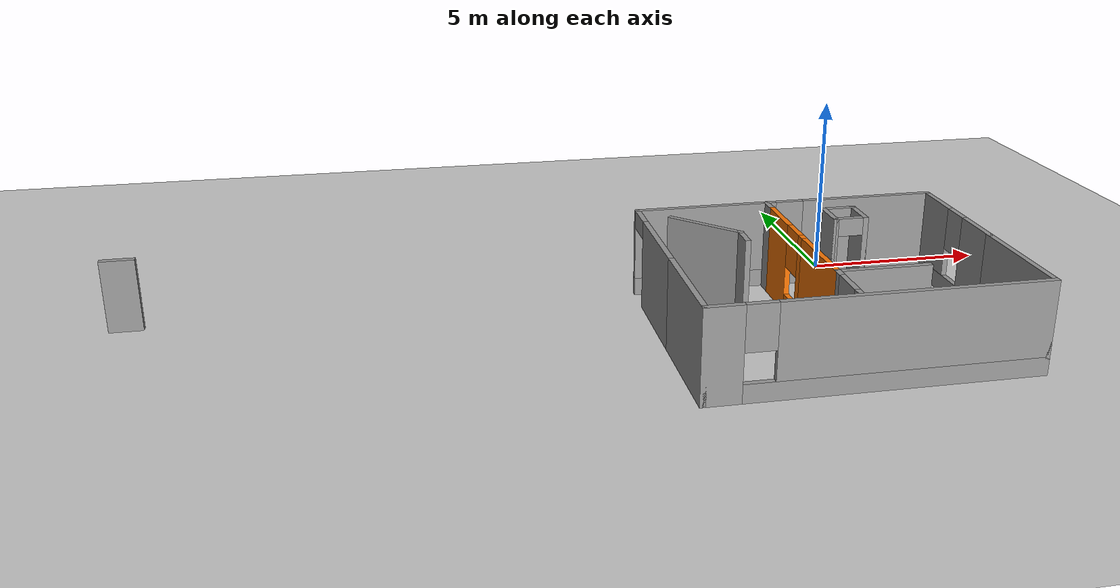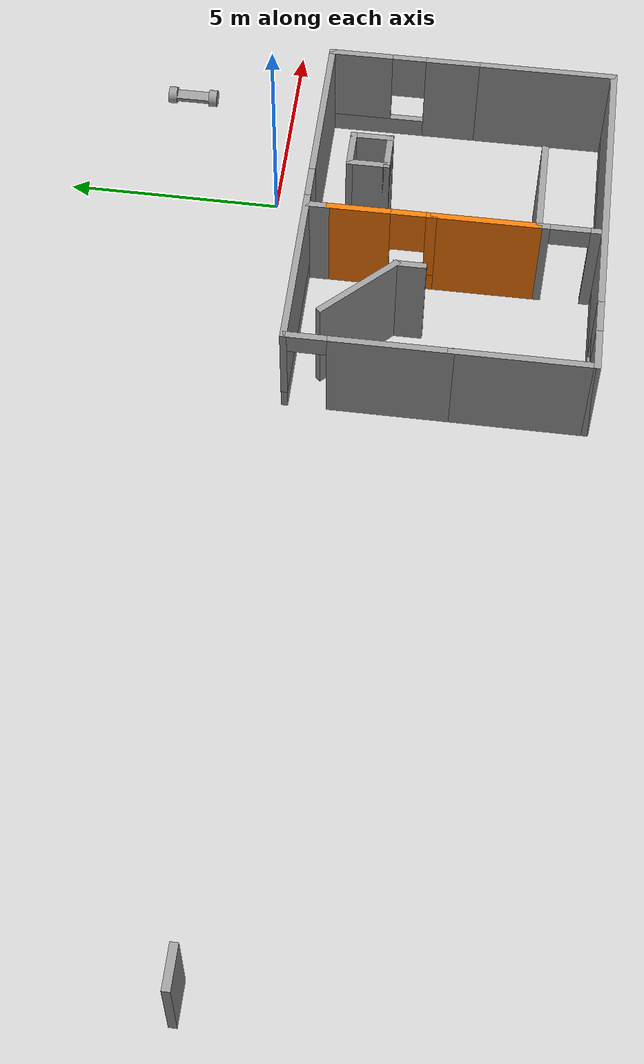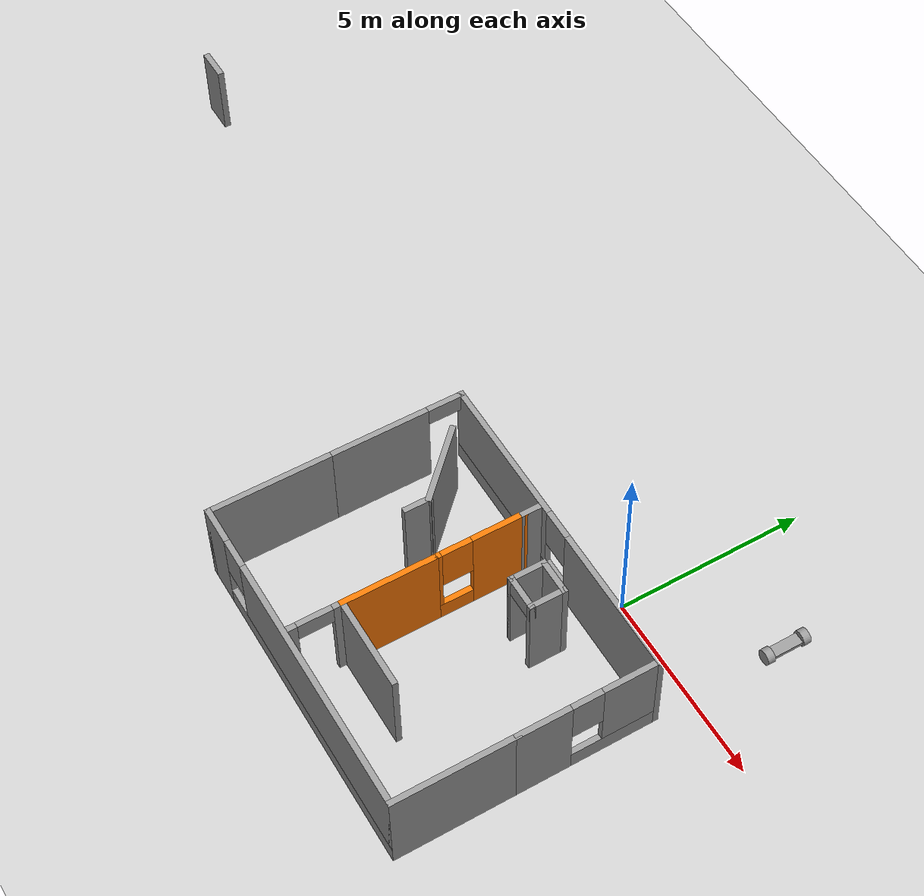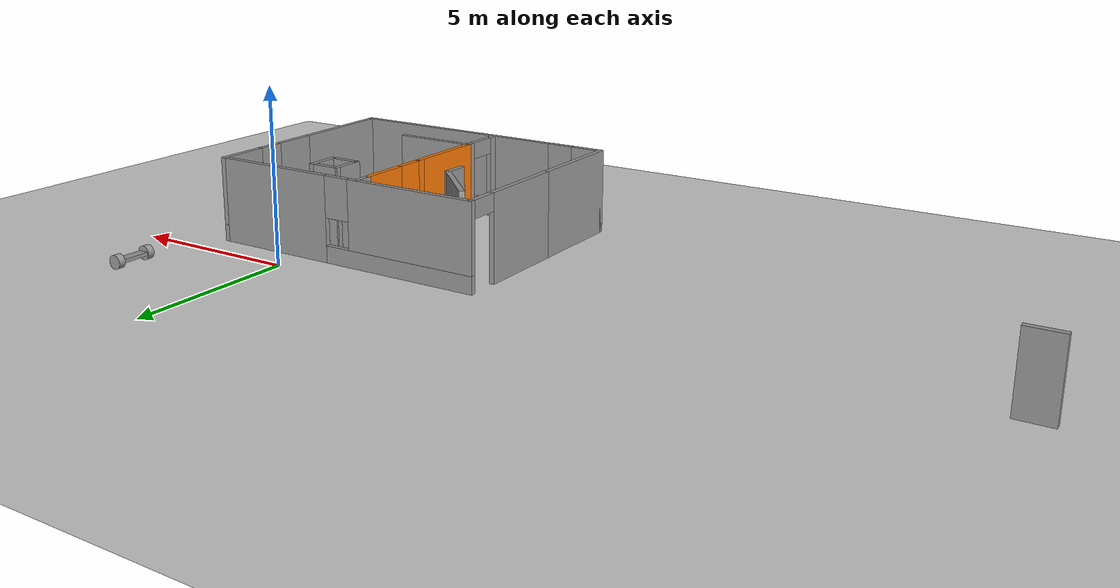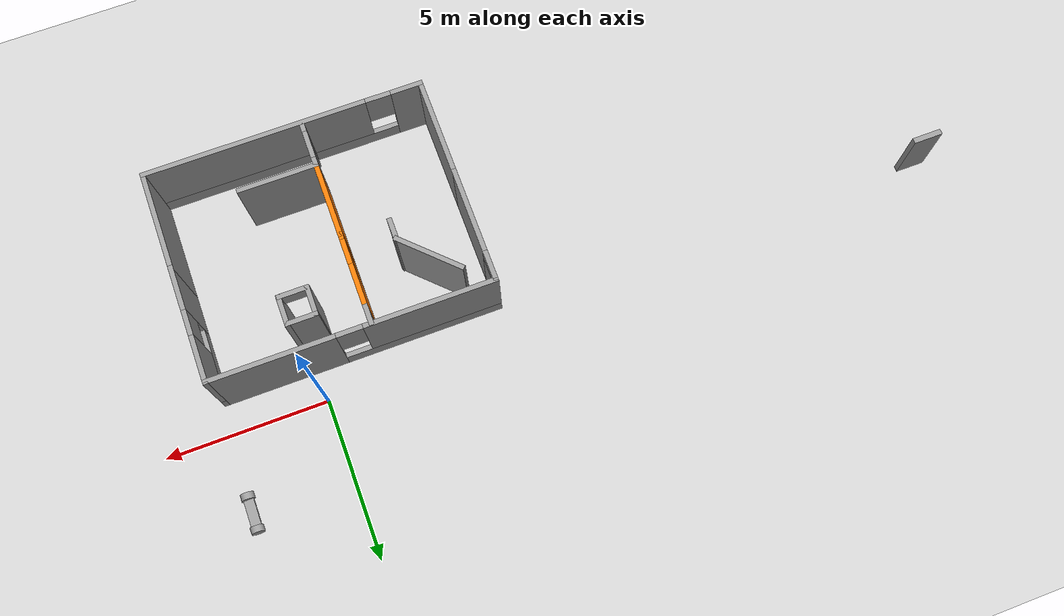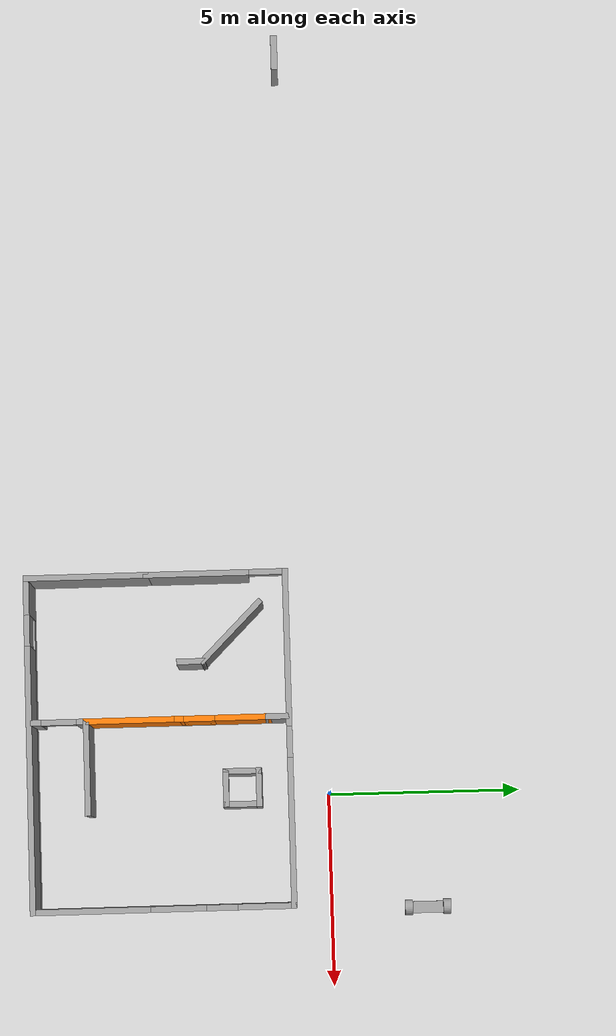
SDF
<sdf version="1.6">
 <world name="default">
  <light name="sun" type="directional">
   <pose>0 0 10 0 -0 0</pose>
   <diffuse>0.8 0.8 0.8 1</diffuse>
   <specular>0.2 0.2 0.2 1</specular>
   <attenuation>
    <range>1000</range>
    <constant>0.9</constant>
    <linear>0.01</linear>
    <quadratic>0.001</quadratic>
   </attenuation>
   <direction>-0.5 0.1 -0.9</direction>
  </light>
  <model name="ground_plane">
   <static>1</static>
   <link name="link">
    <collision name="collision">
     <geometry><plane><normal>0 0 1</normal><size>100 100</size></plane></geometry>
     <surface>
      <contact><collide_bitmask>65535</collide_bitmask></contact>
      <friction><ode><mu>100</mu><mu2>50</mu2></ode></friction>
     </surface>
    </collision>
    <visual name="visual">
     <cast_shadows>0</cast_shadows>
     <geometry><plane><normal>0 0 1</normal><size>100 100</size></plane></geometry>
     <material>
      <script><uri>file://media/materials/scripts/gazebo.material</uri><name>Gazebo/Grey</name></script>
     </material>
    </visual>
   </link>
  </model>
  <gravity>0 0 -9.8</gravity>
  <magnetic_field>6e-06 2.3e-05 -4.2e-05</magnetic_field>
  <atmosphere type="adiabatic"/>
  <physics name="default_physics" default="0" type="ode">
   <max_step_size>0.001</max_step_size>
   <real_time_factor>1</real_time_factor>
   <real_time_update_rate>1000</real_time_update_rate>
  </physics>
  <scene><ambient>0.4 0.4 0.4 1</ambient><background>0.7 0.7 0.7 1</background><shadows>1</shadows></scene>
  <audio><device>default</device></audio>
  <spherical_coordinates>
   <surface_model>EARTH_WGS84</surface_model>
   <latitude_deg>0</latitude_deg>
   <longitude_deg>0</longitude_deg>
   <elevation>0</elevation>
   <heading_deg>0</heading_deg>
  </spherical_coordinates>
  <model name="myworld">
   <pose>-1.45 -4.35 0 0 -0 0</pose>
   <link name="Door_2">
    <collision name="Door_2_Collision">
     <geometry><box><size>0.9 0.17 2</size></box></geometry>
     <pose>0 0 1 0 -0 0</pose>
    </collision>
    <visual name="Door_2_Visual">
     <pose>0 0 1 0 -0 0</pose>
     <geometry><box><size>0.9 0.17 2</size></box></geometry>
     <material>
      <script><uri>file://media/materials/scripts/gazebo.material</uri><name>Gazebo/Grey</name></script>
     </material>
    </visual>
    <pose>-18.0599 3.45189 0 0 -0 0</pose>
   </link>
   <link name="Wall_0">
    <pose>-4.3 1.55 0 0 -0 -1.5708</pose>
    <visual name="Wall_0_Visual_0">
     <pose>-1.8175 0 1.25 0 -0 0</pose>
     <geometry><box><size>0.115 0.15 2.5</size></box></geometry>
     <material>
      <script><uri>file://media/materials/scripts/gazebo.material</uri><name>Gazebo/Grey</name></script>
      <ambient>1 1 1 1</ambient>
     </material>
     <meta><layer>0</layer></meta>
    </visual>
    <collision name="Wall_0_Collision_0">
     <geometry><box><size>0.115 0.15 2.5</size></box></geometry>
     <pose>-1.8175 0 1.25 0 -0 0</pose>
    </collision>
    <visual name="Wall_0_Visual_1">
     <pose>0.5075 0 1.25 0 -0 0</pose>
     <geometry><box><size>2.735 0.15 2.5</size></box></geometry>
     <material>
      <script><uri>file://media/materials/scripts/gazebo.material</uri><name>Gazebo/Grey</name></script>
      <ambient>1 1 1 1</ambient>
     </material>
     <meta><layer>0</layer></meta>
    </visual>
    <collision name="Wall_0_Collision_1">
     <geometry><box><size>2.735 0.15 2.5</size></box></geometry>
     <pose>0.5075 0 1.25 0 -0 0</pose>
    </collision>
    <visual name="Wall_0_Visual_2">
     <pose>-1.31 0 2.25 0 -0 0</pose>
     <geometry><box><size>0.9 0.15 0.5</size></box></geometry>
     <material>
      <script><uri>file://media/materials/scripts/gazebo.material</uri><name>Gazebo/Grey</name></script>
      <ambient>1 1 1 1</ambient>
     </material>
     <meta><layer>0</layer></meta>
    </visual>
    <collision name="Wall_0_Collision_2">
     <geometry><box><size>0.9 0.15 0.5</size></box></geometry>
     <pose>-1.31 0 2.25 0 -0 0</pose>
    </collision>
   </link>
   <link name="Wall_10">
    <collision name="Wall_10_Collision">
     <geometry><box><size>1 0.15 2.5</size></box></geometry>
     <pose>0 0 1.25 0 -0 0</pose>
    </collision>
    <visual name="Wall_10_Visual">
     <pose>0 0 1.25 0 -0 0</pose>
     <geometry><box><size>1 0.15 2.5</size></box></geometry>
     <material>
      <script><uri>file://media/materials/scripts/gazebo.material</uri><name>Gazebo/Grey</name></script>
      <ambient>1 1 1 1</ambient>
     </material>
     <meta><layer>0</layer></meta>
    </visual>
    <pose>0.82 2.105 0 0 -0 -1.5708</pose>
   </link>
   <link name="Wall_11">
    <pose>1.245 1.68 0 0 -0 0</pose>
    <visual name="Wall_11_Visual_0">
     <pose>-0.4575 0 1.25 0 -0 0</pose>
     <geometry><box><size>0.085 0.15 2.5</size></box></geometry>
     <material>
      <script><uri>file://media/materials/scripts/gazebo.material</uri><name>Gazebo/Grey</name></script>
      <ambient>1 1 1 1</ambient>
     </material>
     <meta><layer>0</layer></meta>
    </visual>
    <collision name="Wall_11_Collision_0">
     <geometry><box><size>0.085 0.15 2.5</size></box></geometry>
     <pose>-0.4575 0 1.25 0 -0 0</pose>
    </collision>
    <visual name="Wall_11_Visual_1">
     <pose>0.4925 0 1.25 0 -0 0</pose>
     <geometry><box><size>0.015 0.15 2.5</size></box></geometry>
     <material>
      <script><uri>file://media/materials/scripts/gazebo.material</uri><name>Gazebo/Grey</name></script>
      <ambient>1 1 1 1</ambient>
     </material>
     <meta><layer>0</layer></meta>
    </visual>
    <collision name="Wall_11_Collision_1">
     <geometry><box><size>0.015 0.15 2.5</size></box></geometry>
     <pose>0.4925 0 1.25 0 -0 0</pose>
    </collision>
    <visual name="Wall_11_Visual_2">
     <pose>0.035 0 2.25 0 -0 0</pose>
     <geometry><box><size>0.9 0.15 0.5</size></box></geometry>
     <material>
      <script><uri>file://media/materials/scripts/gazebo.material</uri><name>Gazebo/Grey</name></script>
      <ambient>1 1 1 1</ambient>
     </material>
     <meta><layer>0</layer></meta>
    </visual>
    <collision name="Wall_11_Collision_2">
     <geometry><box><size>0.9 0.15 0.5</size></box></geometry>
     <pose>0.035 0 2.25 0 -0 0</pose>
    </collision>
   </link>
   <link name="Wall_12">
    <collision name="Wall_12_Collision">
     <geometry><box><size>1 0.15 2.5</size></box></geometry>
     <pose>0 0 1.25 0 -0 0</pose>
    </collision>
    <visual name="Wall_12_Visual">
     <pose>0 0 1.25 0 -0 0</pose>
     <geometry><box><size>1 0.15 2.5</size></box></geometry>
     <material>
      <script><uri>file://media/materials/scripts/gazebo.material</uri><name>Gazebo/Grey</name></script>
      <ambient>1 1 1 1</ambient>
     </material>
     <meta><layer>0</layer></meta>
    </visual>
    <pose>1.67 2.105 0 0 -0 1.5708</pose>
   </link>
   <link name="Wall_13">
    <collision name="Wall_13_Collision">
     <geometry><box><size>1 0.15 2.5</size></box></geometry>
     <pose>0 0 1.25 0 -0 0</pose>
    </collision>
    <visual name="Wall_13_Visual">
     <pose>0 0 1.25 0 -0 0</pose>
     <geometry><box><size>1 0.15 2.5</size></box></geometry>
     <material>
      <script><uri>file://media/materials/scripts/gazebo.material</uri><name>Gazebo/Grey</name></script>
      <ambient>1 1 1 1</ambient>
     </material>
     <meta><layer>0</layer></meta>
    </visual>
    <pose>1.245 2.53 0 0 -0 3.14159</pose>
   </link>
   <link name="Wall_15">
    <collision name="Wall_15_Collision">
     <geometry><box><size>3.25 0.15 2.5</size></box></geometry>
     <pose>0 0 1.25 0 -0 0</pose>
    </collision>
    <visual name="Wall_15_Visual">
     <pose>0 0 1.25 0 -0 0</pose>
     <geometry><box><size>3.25 0.15 2.5</size></box></geometry>
     <material>
      <script><uri>file://media/materials/scripts/gazebo.material</uri><name>Gazebo/Grey</name></script>
      <ambient>1 1 1 1</ambient>
     </material>
     <meta><layer>0</layer></meta>
    </visual>
    <pose>-4.3 -1.8 0 0 -0 -1.5708</pose>
   </link>
   <link name="Wall_16">
    <pose>0 -3.35 0 0 -0 0</pose>
    <visual name="Wall_16_Visual_0">
     <pose>-3.86482 0 1.25 0 -0 0</pose>
     <geometry><box><size>1.02037 0.15 2.5</size></box></geometry>
     <material>
      <script><uri>file://media/materials/scripts/gazebo.material</uri><name>Gazebo/Grey</name></script>
      <ambient>1 1 1 1</ambient>
     </material>
     <meta><layer>0</layer></meta>
    </visual>
    <collision name="Wall_16_Collision_0">
     <geometry><box><size>1.02037 0.15 2.5</size></box></geometry>
     <pose>-3.86482 0 1.25 0 -0 0</pose>
    </collision>
    <visual name="Wall_16_Visual_1">
     <pose>0.510185 0 0.25 0 -0 0</pose>
     <geometry><box><size>7.72963 0.15 0.5</size></box></geometry>
     <material>
      <script><uri>file://media/materials/scripts/gazebo.material</uri><name>Gazebo/Grey</name></script>
      <ambient>1 1 1 1</ambient>
     </material>
     <meta><layer>0</layer></meta>
    </visual>
    <collision name="Wall_16_Collision_1">
     <geometry><box><size>7.72963 0.15 0.5</size></box></geometry>
     <pose>0.510185 0 0.25 0 -0 0</pose>
    </collision>
    <visual name="Wall_16_Visual_2">
     <pose>0.910185 0 1.5 0 -0 0</pose>
     <geometry><box><size>6.92963 0.15 2</size></box></geometry>
     <material>
      <script><uri>file://media/materials/scripts/gazebo.material</uri><name>Gazebo/Grey</name></script>
      <ambient>1 1 1 1</ambient>
     </material>
     <meta><layer>0</layer></meta>
    </visual>
    <collision name="Wall_16_Collision_2">
     <geometry><box><size>6.92963 0.15 2</size></box></geometry>
     <pose>0.910185 0 1.5 0 -0 0</pose>
    </collision>
    <visual name="Wall_16_Visual_3">
     <pose>-2.95463 0 1.9 0 -0 0</pose>
     <geometry><box><size>0.8 0.15 1.2</size></box></geometry>
     <material>
      <script><uri>file://media/materials/scripts/gazebo.material</uri><name>Gazebo/Grey</name></script>
      <ambient>1 1 1 1</ambient>
     </material>
     <meta><layer>0</layer></meta>
    </visual>
    <collision name="Wall_16_Collision_3">
     <geometry><box><size>0.8 0.15 1.2</size></box></geometry>
     <pose>-2.95463 0 1.9 0 -0 0</pose>
    </collision>
   </link>
   <link name="Wall_17">
    <collision name="Wall_17_Collision">
     <geometry><box><size>3.25 0.15 2.5</size></box></geometry>
     <pose>0 0 1.25 0 -0 0</pose>
    </collision>
    <visual name="Wall_17_Visual">
     <pose>0 0 1.25 0 -0 0</pose>
     <geometry><box><size>3.25 0.15 2.5</size></box></geometry>
     <material>
      <script><uri>file://media/materials/scripts/gazebo.material</uri><name>Gazebo/Grey</name></script>
      <ambient>1 1 1 1</ambient>
     </material>
     <meta><layer>0</layer></meta>
    </visual>
    <pose>4.3 -1.8 0 0 -0 1.5708</pose>
   </link>
   <link name="Wall_19">
    <collision name="Wall_19_Collision">
     <geometry><box><size>2.5 0.15 2.5</size></box></geometry>
     <pose>0 0 1.25 0 -0 0</pose>
    </collision>
    <visual name="Wall_19_Visual">
     <pose>0 0 1.25 0 -0 0</pose>
     <geometry><box><size>2.5 0.15 2.5</size></box></geometry>
     <material>
      <script><uri>file://media/materials/scripts/gazebo.material</uri><name>Gazebo/Grey</name></script>
      <ambient>0.996078 0.47451 0.0196078 1</ambient>
     </material>
     <meta><layer>0</layer></meta>
    </visual>
    <pose>-0.56 -0.705 0 0 -0 -1.5708</pose>
   </link>
   <link name="Wall_2">
    <pose>4.3 1.55 0 0 -0 1.5708</pose>
    <visual name="Wall_2_Visual_0">
     <pose>-1.1625 0 1.25 0 -0 0</pose>
     <geometry><box><size>1.425 0.15 2.5</size></box></geometry>
     <material>
      <script><uri>file://media/materials/scripts/gazebo.material</uri><name>Gazebo/Grey</name></script>
      <ambient>1 1 1 1</ambient>
     </material>
     <meta><layer>0</layer></meta>
    </visual>
    <collision name="Wall_2_Collision_0">
     <geometry><box><size>1.425 0.15 2.5</size></box></geometry>
     <pose>-1.1625 0 1.25 0 -0 0</pose>
    </collision>
    <visual name="Wall_2_Visual_1">
     <pose>0.7125 0 0.25 0 -0 0</pose>
     <geometry><box><size>2.325 0.15 0.5</size></box></geometry>
     <material>
      <script><uri>file://media/materials/scripts/gazebo.material</uri><name>Gazebo/Grey</name></script>
      <ambient>1 1 1 1</ambient>
     </material>
     <meta><layer>0</layer></meta>
    </visual>
    <collision name="Wall_2_Collision_1">
     <geometry><box><size>2.325 0.15 0.5</size></box></geometry>
     <pose>0.7125 0 0.25 0 -0 0</pose>
    </collision>
    <visual name="Wall_2_Visual_2">
     <pose>1.1125 0 1.5 0 -0 0</pose>
     <geometry><box><size>1.525 0.15 2</size></box></geometry>
     <material>
      <script><uri>file://media/materials/scripts/gazebo.material</uri><name>Gazebo/Grey</name></script>
      <ambient>1 1 1 1</ambient>
     </material>
     <meta><layer>0</layer></meta>
    </visual>
    <collision name="Wall_2_Collision_2">
     <geometry><box><size>1.525 0.15 2</size></box></geometry>
     <pose>1.1125 0 1.5 0 -0 0</pose>
    </collision>
    <visual name="Wall_2_Visual_3">
     <pose>-0.05 0 1.9 0 -0 0</pose>
     <geometry><box><size>0.8 0.15 1.2</size></box></geometry>
     <material>
      <script><uri>file://media/materials/scripts/gazebo.material</uri><name>Gazebo/Grey</name></script>
      <ambient>1 1 1 1</ambient>
     </material>
     <meta><layer>0</layer></meta>
    </visual>
    <collision name="Wall_2_Collision_3">
     <geometry><box><size>0.8 0.15 1.2</size></box></geometry>
     <pose>-0.05 0 1.9 0 -0 0</pose>
    </collision>
   </link>
   <link name="Wall_20">
    <collision name="Wall_20_Collision">
     <geometry><box><size>2.5 0.15 2.5</size></box></geometry>
     <pose>0 0 1.25 0 -0 0</pose>
    </collision>
    <visual name="Wall_20_Visual">
     <pose>0 0 1.25 0 -0 0</pose>
     <geometry><box><size>2.5 0.15 2.5</size></box></geometry>
     <material>
      <script><uri>file://media/materials/scripts/gazebo.material</uri><name>Gazebo/Grey</name></script>
      <ambient>1 1 1 1</ambient>
     </material>
     <meta><layer>0</layer></meta>
    </visual>
    <pose>0.615 -1.88 0 0 -0 0</pose>
   </link>
   <link name="Wall_22">
    <pose>-0.56 -2.555 0 0 -0 -1.5708</pose>
    <visual name="Wall_22_Visual_0">
     <pose>-0.58641 0 1.25 0 -0 0</pose>
     <geometry><box><size>0.327181 0.15 2.5</size></box></geometry>
     <material>
      <script><uri>file://media/materials/scripts/gazebo.material</uri><name>Gazebo/Grey</name></script>
      <ambient>1 1 1 1</ambient>
     </material>
     <meta><layer>0</layer></meta>
    </visual>
    <collision name="Wall_22_Collision_0">
     <geometry><box><size>0.327181 0.15 2.5</size></box></geometry>
     <pose>-0.58641 0 1.25 0 -0 0</pose>
    </collision>
    <visual name="Wall_22_Visual_1">
     <pose>0.61359 0 1.25 0 -0 0</pose>
     <geometry><box><size>0.272819 0.15 2.5</size></box></geometry>
     <material>
      <script><uri>file://media/materials/scripts/gazebo.material</uri><name>Gazebo/Grey</name></script>
      <ambient>1 1 1 1</ambient>
     </material>
     <meta><layer>0</layer></meta>
    </visual>
    <collision name="Wall_22_Collision_1">
     <geometry><box><size>0.272819 0.15 2.5</size></box></geometry>
     <pose>0.61359 0 1.25 0 -0 0</pose>
    </collision>
    <visual name="Wall_22_Visual_2">
     <pose>0.027181 0 2.25 0 -0 0</pose>
     <geometry><box><size>0.9 0.15 0.5</size></box></geometry>
     <material>
      <script><uri>file://media/materials/scripts/gazebo.material</uri><name>Gazebo/Grey</name></script>
      <ambient>1 1 1 1</ambient>
     </material>
     <meta><layer>0</layer></meta>
    </visual>
    <collision name="Wall_22_Collision_2">
     <geometry><box><size>0.9 0.15 0.5</size></box></geometry>
     <pose>0.027181 0 2.25 0 -0 0</pose>
    </collision>
   </link>
   <link name="Wall_24">
    <collision name="Wall_24_Collision">
     <geometry><box><size>0.66121 0.15 2.5</size></box></geometry>
     <pose>0 0 1.25 0 -0 0</pose>
    </collision>
    <visual name="Wall_24_Visual">
     <pose>0 0 1.25 0 -0 0</pose>
     <geometry><box><size>0.66121 0.15 2.5</size></box></geometry>
     <material>
      <script><uri>file://media/materials/scripts/gazebo.material</uri><name>Gazebo/Grey</name></script>
      <ambient>1 1 1 1</ambient>
     </material>
     <meta><layer>0</layer></meta>
    </visual>
    <pose>-0.560557 3.0756 0 0 -0 -1.56862</pose>
   </link>
   <link name="Wall_3">
    <pose>0 3.35 0 0 -0 3.14159</pose>
    <visual name="Wall_3_Visual_0">
     <pose>-2.4375 0 1.25 0 -0 0</pose>
     <geometry><box><size>3.875 0.15 2.5</size></box></geometry>
     <material>
      <script><uri>file://media/materials/scripts/gazebo.material</uri><name>Gazebo/Grey</name></script>
      <ambient>1 1 1 1</ambient>
     </material>
     <meta><layer>0</layer></meta>
    </visual>
    <collision name="Wall_3_Collision_0">
     <geometry><box><size>3.875 0.15 2.5</size></box></geometry>
     <pose>-2.4375 0 1.25 0 -0 0</pose>
    </collision>
    <visual name="Wall_3_Visual_1">
     <pose>1.9375 0 0.25 0 -0 0</pose>
     <geometry><box><size>4.875 0.15 0.5</size></box></geometry>
     <material>
      <script><uri>file://media/materials/scripts/gazebo.material</uri><name>Gazebo/Grey</name></script>
      <ambient>1 1 1 1</ambient>
     </material>
     <meta><layer>0</layer></meta>
    </visual>
    <collision name="Wall_3_Collision_1">
     <geometry><box><size>4.875 0.15 0.5</size></box></geometry>
     <pose>1.9375 0 0.25 0 -0 0</pose>
    </collision>
    <visual name="Wall_3_Visual_2">
     <pose>2.3375 0 1.5 0 -0 0</pose>
     <geometry><box><size>4.075 0.15 2</size></box></geometry>
     <material>
      <script><uri>file://media/materials/scripts/gazebo.material</uri><name>Gazebo/Grey</name></script>
      <ambient>1 1 1 1</ambient>
     </material>
     <meta><layer>0</layer></meta>
    </visual>
    <collision name="Wall_3_Collision_2">
     <geometry><box><size>4.075 0.15 2</size></box></geometry>
     <pose>2.3375 0 1.5 0 -0 0</pose>
    </collision>
    <visual name="Wall_3_Visual_3">
     <pose>-0.1 0 1.9 0 -0 0</pose>
     <geometry><box><size>0.8 0.15 1.2</size></box></geometry>
     <material>
      <script><uri>file://media/materials/scripts/gazebo.material</uri><name>Gazebo/Grey</name></script>
      <ambient>1 1 1 1</ambient>
     </material>
     <meta><layer>0</layer></meta>
    </visual>
    <collision name="Wall_3_Collision_3">
     <geometry><box><size>0.8 0.15 1.2</size></box></geometry>
     <pose>-0.1 0 1.9 0 -0 0</pose>
    </collision>
   </link>
   <link name="Wall_5">
    <collision name="Wall_5_Collision">
     <geometry><box><size>2.25 0.15 2.5</size></box></geometry>
     <pose>0 0 1.25 0 -0 0</pose>
    </collision>
    <visual name="Wall_5_Visual">
     <pose>0 0 1.25 0 -0 0</pose>
     <geometry><box><size>2.25 0.15 2.5</size></box></geometry>
     <material>
      <script><uri>file://media/materials/scripts/gazebo.material</uri><name>Gazebo/Grey</name></script>
      <ambient>1 1 1 1</ambient>
     </material>
     <meta><layer>0</layer></meta>
    </visual>
    <pose>-2.77754 1.90754 0 0 -0 -0.785398</pose>
   </link>
   <link name="Wall_6">
    <collision name="Wall_6_Collision">
     <geometry><box><size>0.75 0.15 2.5</size></box></geometry>
     <pose>0 0 1.25 0 -0 0</pose>
    </collision>
    <visual name="Wall_6_Visual">
     <pose>0 0 1.25 0 -0 0</pose>
     <geometry><box><size>0.75 0.15 2.5</size></box></geometry>
     <material>
      <script><uri>file://media/materials/scripts/gazebo.material</uri><name>Gazebo/Grey</name></script>
      <ambient>1 1 1 1</ambient>
     </material>
     <meta><layer>0</layer></meta>
    </visual>
    <pose>-2.03508 0.865076 0 0 -0 -1.5708</pose>
   </link>
   <link name="Wall_8">
    <pose>-0.56 1.645 0 0 -0 -1.5708</pose>
    <visual name="Wall_8_Visual_0">
     <pose>-0.521631 0 1.25 0 -0 0</pose>
     <geometry><box><size>1.45674 0.15 2.5</size></box></geometry>
     <material>
      <script><uri>file://media/materials/scripts/gazebo.material</uri><name>Gazebo/Grey</name></script>
      <ambient>0.996078 0.47451 0.0196078 1</ambient>
     </material>
     <meta><layer>0</layer></meta>
    </visual>
    <collision name="Wall_8_Collision_0">
     <geometry><box><size>1.45674 0.15 2.5</size></box></geometry>
     <pose>-0.521631 0 1.25 0 -0 0</pose>
    </collision>
    <visual name="Wall_8_Visual_1">
     <pose>0.728369 0 0.25 0 -0 0</pose>
     <geometry><box><size>1.04326 0.15 0.5</size></box></geometry>
     <material>
      <script><uri>file://media/materials/scripts/gazebo.material</uri><name>Gazebo/Grey</name></script>
      <ambient>0.996078 0.47451 0.0196078 1</ambient>
     </material>
     <meta><layer>0</layer></meta>
    </visual>
    <collision name="Wall_8_Collision_1">
     <geometry><box><size>1.04326 0.15 0.5</size></box></geometry>
     <pose>0.728369 0 0.25 0 -0 0</pose>
    </collision>
    <visual name="Wall_8_Visual_2">
     <pose>1.12837 0 1.5 0 -0 0</pose>
     <geometry><box><size>0.243262 0.15 2</size></box></geometry>
     <material>
      <script><uri>file://media/materials/scripts/gazebo.material</uri><name>Gazebo/Grey</name></script>
      <ambient>0.996078 0.47451 0.0196078 1</ambient>
     </material>
     <meta><layer>0</layer></meta>
    </visual>
    <collision name="Wall_8_Collision_2">
     <geometry><box><size>0.243262 0.15 2</size></box></geometry>
     <pose>1.12837 0 1.5 0 -0 0</pose>
    </collision>
    <visual name="Wall_8_Visual_3">
     <pose>0.606738 0 1.9 0 -0 0</pose>
     <geometry><box><size>0.8 0.15 1.2</size></box></geometry>
     <material>
      <script><uri>file://media/materials/scripts/gazebo.material</uri><name>Gazebo/Grey</name></script>
      <ambient>0.996078 0.47451 0.0196078 1</ambient>
     </material>
     <meta><layer>0</layer></meta>
    </visual>
    <collision name="Wall_8_Collision_3">
     <geometry><box><size>0.8 0.15 1.2</size></box></geometry>
     <pose>0.606738 0 1.9 0 -0 0</pose>
    </collision>
   </link>
   <static>1</static>
  </model>
  <model name="Robot">
   <link name="link_2">
    <inertial>
     <mass>1</mass>
     <inertia>
      <ixx>0.166667</ixx>
      <ixy>0</ixy>
      <ixz>0</ixz>
      <iyy>0.166667</iyy>
      <iyz>0</iyz>
      <izz>0.166667</izz>
     </inertia>
    </inertial>
    <pose>0 0.5 0.2 0 -0 0</pose>
    <visual name="visual">
     <geometry><box><size>0.3 1 0.1</size></box></geometry>
     <material>
      <lighting>1</lighting>
      <script><uri>file://media/materials/scripts/gazebo.material</uri><name>Gazebo/Grey</name></script>
      <shader type="vertex"><normal_map>__default__</normal_map></shader>
      <ambient>0.3 0.3 0.3 1</ambient>
      <diffuse>0.7 0.7 0.7 1</diffuse>
      <specular>0.01 0.01 0.01 1</specular>
      <emissive>0 0 0 1</emissive>
     </material>
    </visual>
    <collision name="collision">
     <geometry><box><size>0.3 1 0.1</size></box></geometry>
     <surface>
      <friction>
       <ode><mu>1</mu><mu2>1</mu2><fdir1>0 0 0</fdir1><slip1>0</slip1><slip2>0</slip2></ode>
       <torsional>
        <coefficient>1</coefficient>
        <patch_radius>0</patch_radius>
        <surface_radius>0</surface_radius>
        <use_patch_radius>1</use_patch_radius>
        <ode><slip>0</slip></ode>
       </torsional>
      </friction>
      <bounce><restitution_coefficient>0</restitution_coefficient><threshold>1e+06</threshold></bounce>
      <contact>
       <collide_without_contact>0</collide_without_contact>
       <collide_without_contact_bitmask>1</collide_without_contact_bitmask>
       <collide_bitmask>1</collide_bitmask>
       <ode>
        <soft_cfm>0</soft_cfm>
        <soft_erp>0.2</soft_erp>
        <kp>1e+13</kp>
        <kd>1</kd>
        <max_vel>0.01</max_vel>
        <min_depth>0</min_depth>
       </ode>
       <bullet>
        <split_impulse>1</split_impulse>
        <split_impulse_penetration_threshold>-0.01</split_impulse_penetration_threshold>
        <soft_cfm>0</soft_cfm>
        <soft_erp>0.2</soft_erp>
        <kp>1e+13</kp>
        <kd>1</kd>
       </bullet>
      </contact>
     </surface>
    </collision>
   </link>
   <link name="link_3">
    <inertial>
     <mass>1</mass>
     <inertia><ixx>0.145833</ixx><ixy>0</ixy><ixz>0</ixz><iyy>0.145833</iyy><iyz>0</iyz><izz>0.125</izz></inertia>
    </inertial>
    <pose>0 0 0.2 1.571 -0 0</pose>
    <visual name="visual">
     <geometry><cylinder><radius>0.2</radius><length>0.2</length></cylinder></geometry>
     <material>
      <lighting>1</lighting>
      <script><uri>file://media/materials/scripts/gazebo.material</uri><name>Gazebo/Grey</name></script>
      <shader type="vertex"><normal_map>__default__</normal_map></shader>
      <ambient>0.3 0.3 0.3 1</ambient>
      <diffuse>0.7 0.7 0.7 1</diffuse>
      <specular>0.01 0.01 0.01 1</specular>
      <emissive>0 0 0 1</emissive>
     </material>
    </visual>
    <collision name="collision">
     <geometry><cylinder><radius>0.2</radius><length>0.2</length></cylinder></geometry>
     <surface>
      <friction>
       <ode><mu>1</mu><mu2>1</mu2><fdir1>0 0 0</fdir1><slip1>0</slip1><slip2>0</slip2></ode>
       <torsional>
        <coefficient>1</coefficient>
        <patch_radius>0</patch_radius>
        <surface_radius>0</surface_radius>
        <use_patch_radius>1</use_patch_radius>
        <ode><slip>0</slip></ode>
       </torsional>
      </friction>
      <bounce><restitution_coefficient>0</restitution_coefficient><threshold>1e+06</threshold></bounce>
      <contact>
       <collide_without_contact>0</collide_without_contact>
       <collide_without_contact_bitmask>1</collide_without_contact_bitmask>
       <collide_bitmask>1</collide_bitmask>
       <ode>
        <soft_cfm>0</soft_cfm>
        <soft_erp>0.2</soft_erp>
        <kp>1e+13</kp>
        <kd>1</kd>
        <max_vel>0.01</max_vel>
        <min_depth>0</min_depth>
       </ode>
       <bullet>
        <split_impulse>1</split_impulse>
        <split_impulse_penetration_threshold>-0.01</split_impulse_penetration_threshold>
        <soft_cfm>0</soft_cfm>
        <soft_erp>0.2</soft_erp>
        <kp>1e+13</kp>
        <kd>1</kd>
       </bullet>
      </contact>
     </surface>
    </collision>
   </link>
   <link name="link_4">
    <inertial>
     <mass>1</mass>
     <inertia><ixx>0.145833</ixx><ixy>0</ixy><ixz>0</ixz><iyy>0.145833</iyy><iyz>0</iyz><izz>0.125</izz></inertia>
    </inertial>
    <pose>0 1 0.2 1.571 -0 0</pose>
    <visual name="visual">
     <geometry><cylinder><radius>0.2</radius><length>0.2</length></cylinder></geometry>
     <material>
      <lighting>1</lighting>
      <script><uri>file://media/materials/scripts/gazebo.material</uri><name>Gazebo/Grey</name></script>
      <shader type="vertex"><normal_map>__default__</normal_map></shader>
      <ambient>0.3 0.3 0.3 1</ambient>
      <diffuse>0.7 0.7 0.7 1</diffuse>
      <specular>0.01 0.01 0.01 1</specular>
      <emissive>0 0 0 1</emissive>
     </material>
    </visual>
    <collision name="collision">
     <geometry><cylinder><radius>0.2</radius><length>0.2</length></cylinder></geometry>
     <surface>
      <friction>
       <ode><mu>1</mu><mu2>1</mu2><fdir1>0 0 0</fdir1><slip1>0</slip1><slip2>0</slip2></ode>
       <torsional>
        <coefficient>1</coefficient>
        <patch_radius>0</patch_radius>
        <surface_radius>0</surface_radius>
        <use_patch_radius>1</use_patch_radius>
        <ode><slip>0</slip></ode>
       </torsional>
      </friction>
      <bounce><restitution_coefficient>0</restitution_coefficient><threshold>1e+06</threshold></bounce>
      <contact>
       <collide_without_contact>0</collide_without_contact>
       <collide_without_contact_bitmask>1</collide_without_contact_bitmask>
       <collide_bitmask>1</collide_bitmask>
       <ode>
        <soft_cfm>0</soft_cfm>
        <soft_erp>0.2</soft_erp>
        <kp>1e+13</kp>
        <kd>1</kd>
        <max_vel>0.01</max_vel>
        <min_depth>0</min_depth>
       </ode>
       <bullet>
        <split_impulse>1</split_impulse>
        <split_impulse_penetration_threshold>-0.01</split_impulse_penetration_threshold>
        <soft_cfm>0</soft_cfm>
        <soft_erp>0.2</soft_erp>
        <kp>1e+13</kp>
        <kd>1</kd>
       </bullet>
      </contact>
     </surface>
    </collision>
   </link>
   <joint name="link_3_JOINT_0" type="revolute">
    <parent>link_3</parent>
    <child>link_2</child>
    <axis>
     <xyz>1 0 0</xyz>
     <use_parent_model_frame>0</use_parent_model_frame>
     <limit>
      <lower>-1.79769e+308</lower>
      <upper>1.79769e+308</upper>
      <effort>-1</effort>
      <velocity>-1</velocity>
     </limit>
     <dynamics>
      <spring_reference>0</spring_reference>
      <spring_stiffness>0</spring_stiffness>
      <damping>0</damping>
     </dynamics>
    </axis>
    <physics>
     <ode><limit><cfm>0</cfm><erp>0.2</erp></limit><suspension><cfm>0</cfm><erp>0.2</erp></suspension></ode>
    </physics>
   </joint>
   <joint name="link_4_JOINT_1" type="revolute">
    <parent>link_4</parent>
    <child>link_2</child>
    <axis>
     <xyz>1 0 0</xyz>
     <use_parent_model_frame>0</use_parent_model_frame>
     <limit>
      <lower>-1.79769e+308</lower>
      <upper>1.79769e+308</upper>
      <effort>-1</effort>
      <velocity>-1</velocity>
     </limit>
     <dynamics>
      <spring_reference>0</spring_reference>
      <spring_stiffness>0</spring_stiffness>
      <damping>0</damping>
     </dynamics>
    </axis>
    <physics>
     <ode><limit><cfm>0</cfm><erp>0.2</erp></limit><suspension><cfm>0</cfm><erp>0.2</erp></suspension></ode>
    </physics>
   </joint>
   <static>0</static>
   <pose>3 2 0.2 0 -0 0</pose>
  </model>
 </world>
</sdf>
